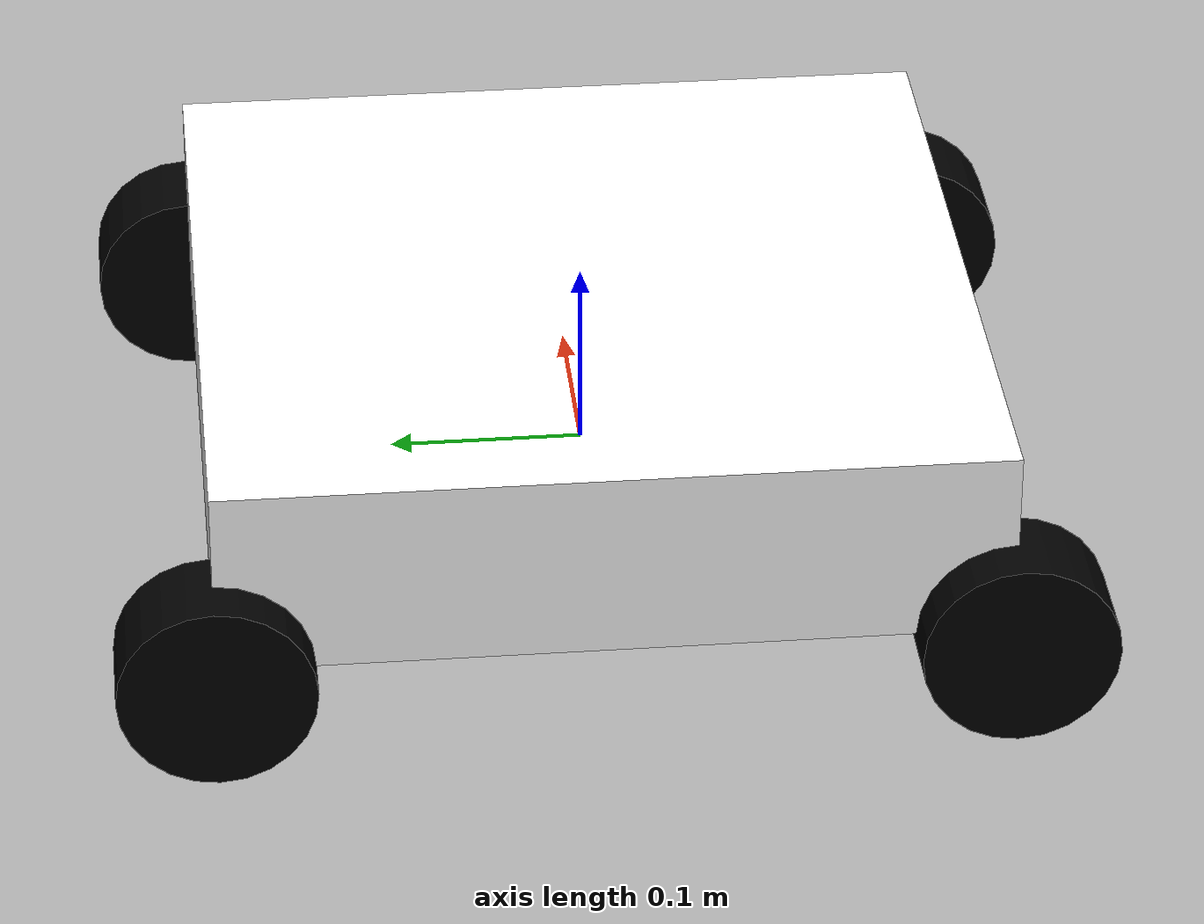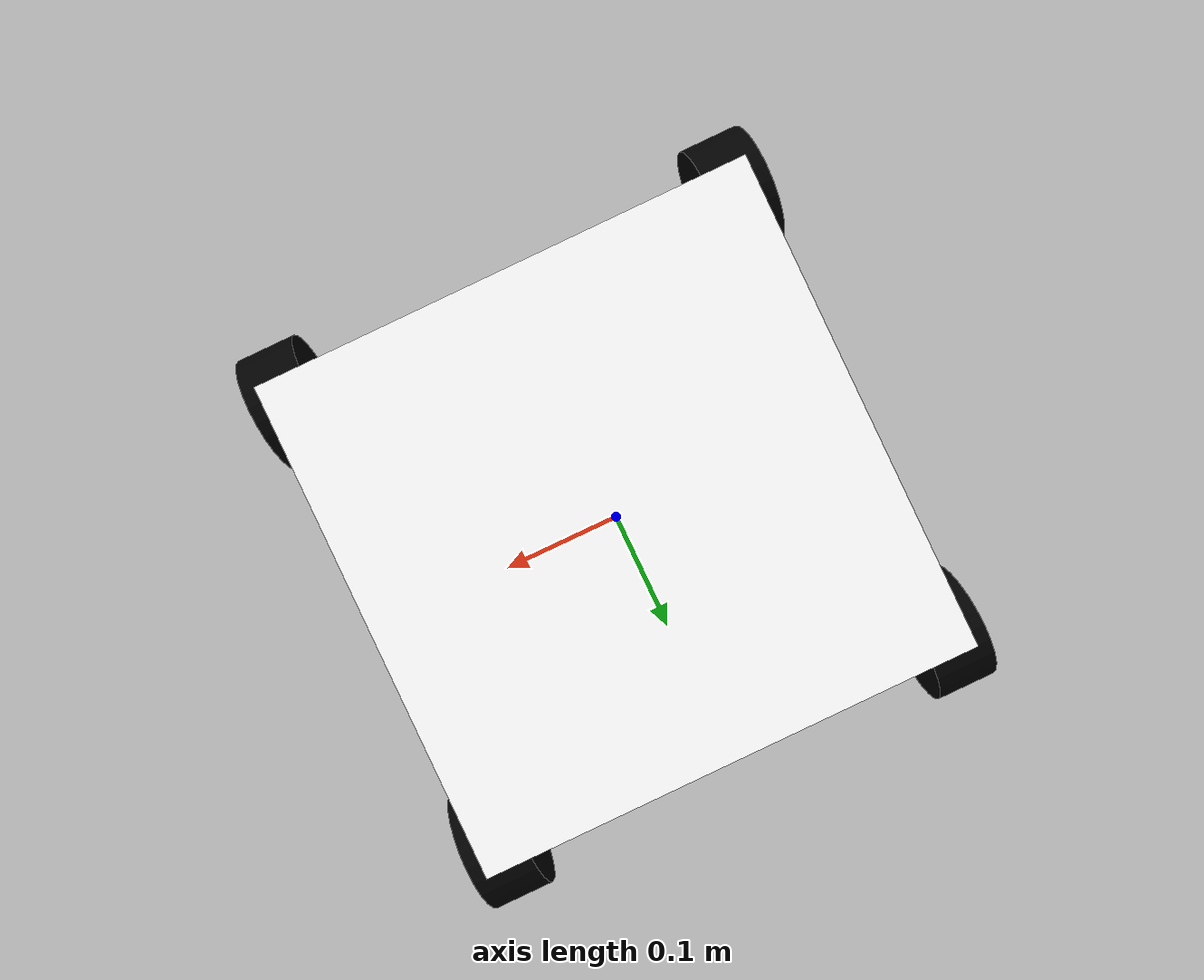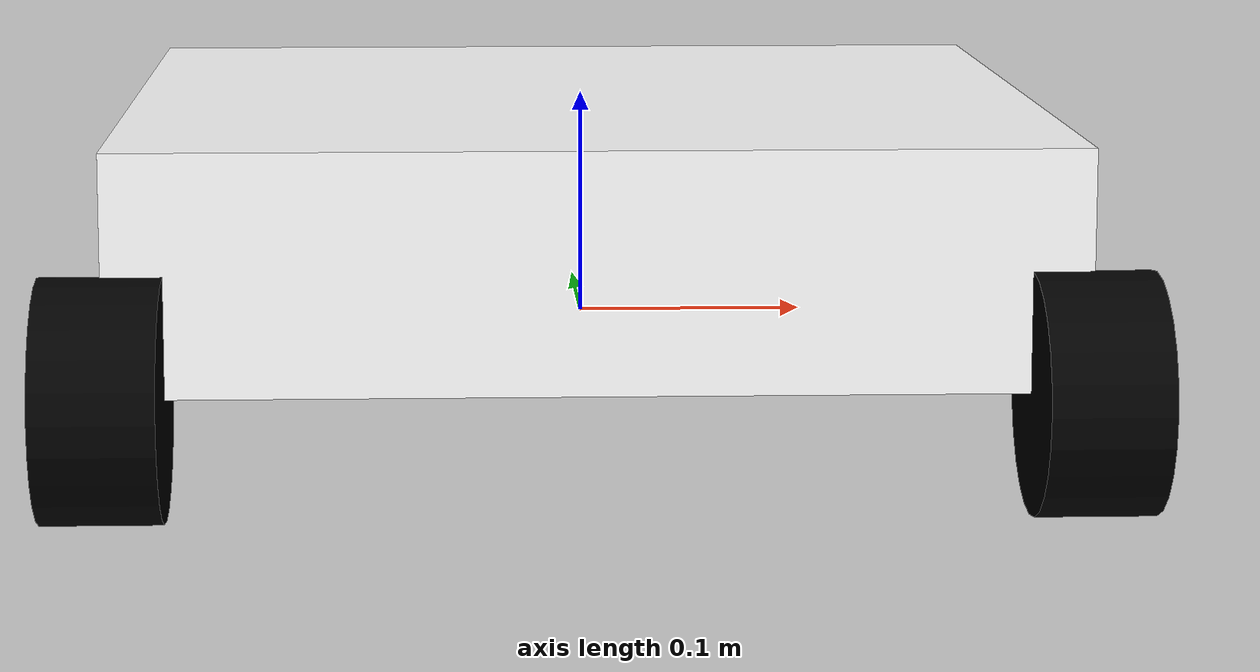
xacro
<?xml version="1.0"?>
	<robot name="Robot1">
		<link name="base_link">
			<visual>
				<geometry>
					<box size="0.4 .4 .1"/>
				</geometry>
				<origin rpy="0 0 0" xyz="0 0 0.05"/>
				<material name="white">
					<color rgba="1 1 1 1"/>
				</material>
			</visual>
		</link>

		<link name="wheel_1">
			<visual>
				<geometry>
					<cylinder length="0.05" radius="0.05"/>
				</geometry>
				<origin rpy="0 1.57 0" xyz="0.2 0.2 0"/>
				<material name="black">
					<color rgba="0 0 0 1"/>
				</material>
			</visual>
		</link>

		<link name="wheel_2">
			<visual>
				<geometry>
					<cylinder length="0.05" radius="0.05"/>
				</geometry>
				<origin rpy="0 1.57 0" xyz="-0.2 0.2 0"/>
				<material name="black"/>
			</visual>
		</link>

		<link name="wheel_3">
			<visual>
				<geometry>
					<cylinder length="0.05" radius="0.05"/>
				</geometry>
				<origin rpy="0 1.57 0" xyz="0.2 -0.2 0"/>
				<material name="black"/>
			</visual>
		</link>

		<link name="wheel_4">
			<visual>
				<geometry>
					<cylinder length="0.05" radius="0.05"/>
				</geometry>
				<origin rpy="0 1.57 0" xyz="-0.2 -0.2 0"/>
				<material name="black"/>
			</visual>
		</link>

		<joint name="base_to_wheel1" type="continuous">
			<parent link="base_link"/>
			<child link="wheel_1"/>
			<origin xyz="0 0 0"/>
		</joint>

		<joint name="base_to_wheel2" type="continuous">
			<parent link="base_link"/>
			<child link="wheel_2"/>
			<origin xyz="0 0 0"/>
		</joint>

		<joint name="base_to_wheel3" type="continuous">
			<parent link="base_link"/>
			<child link="wheel_3"/>
			<origin xyz="0 0 0"/>
		</joint>

		<joint name="base_to_wheel4" type="continuous">
			<parent link="base_link"/>
			<child link="wheel_4"/>
			<origin xyz="0 0 0"/>
		</joint>
	</robot>
